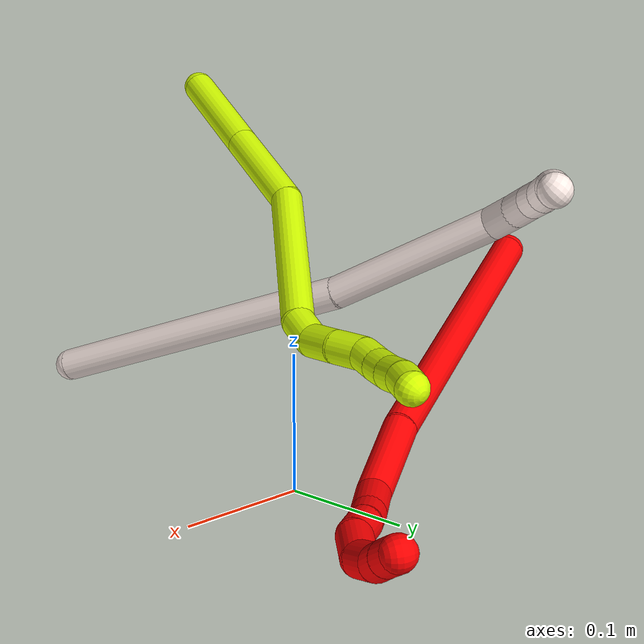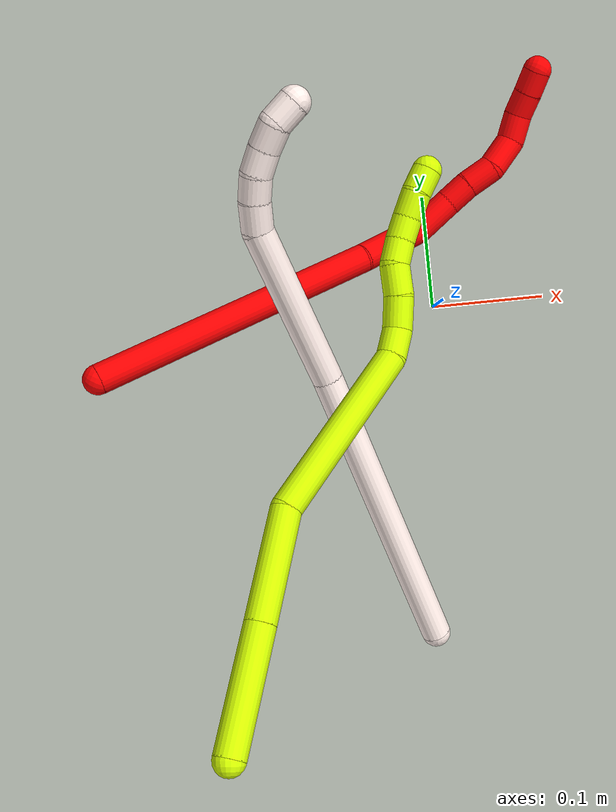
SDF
<sdf version="1.7">
 <world name="default">
  <model name="photoneo_s_sensor">
   <static>1</static>
   <pose>0 0 2 1.57079 1.57079 3.14159</pose>
   <link name="link">
    <inertial><mass>0.1</mass></inertial>
    <sensor name="sensor" type="depth">
     <update_rate>30</update_rate>
     <camera>
      <horizontal_fov>1.22</horizontal_fov>
      <image><width>1920</width><height>1200</height><format>B8G8R8</format></image>
      <clip><near>0.1</near><far>4</far></clip>
      <depth_camera><output>points</output></depth_camera>
     </camera>
     <plugin name="camera_plugin" filename="libgazebo_ros_depth_camera.so">
      <baseline>0.2</baseline>
      <alwaysOn>1</alwaysOn>
      <updateRate>0.0</updateRate>
      <cameraName>camera_ir</cameraName>
      <imageTopicName>/camera/color/image_raw</imageTopicName>
      <cameraInfoTopicName>/camera/color/camera_info</cameraInfoTopicName>
      <depthImageTopicName>/camera/depth/image_raw</depthImageTopicName>
      <depthImageCameraInfoTopicName>/camera/depth/camera_info</depthImageCameraInfoTopicName>
      <pointCloudTopicName>/camera/depth/points</pointCloudTopicName>
      <frameName>fr_optical</frameName>
      <pointCloudCutoff>0.1</pointCloudCutoff>
      <pointCloudCutoffMax>2.0</pointCloudCutoffMax>
      <distortionK1>0</distortionK1>
      <distortionK2>0</distortionK2>
      <distortionK3>0</distortionK3>
      <distortionT1>0</distortionT1>
      <distortionT2>0</distortionT2>
      <CxPrime>0</CxPrime>
      <Cx>0</Cx>
      <Cy>0</Cy>
      <focalLength>0</focalLength>
      <hackBaseline>0</hackBaseline>
     </plugin>
    </sensor>
   </link>
  </model>
  <model name="bin">
   <static>1</static>
   <link name="bottom">
    <collision name="collision-bottom">
     <pose>0 0 -0.01 0 -0 0</pose>
     <geometry><box><size>0.8 0.6 0.02</size></box></geometry>
     <surface>
      <friction><ode><mu>100</mu><mu2>100</mu2></ode></friction>
      <contact><collide_bitmask>65535</collide_bitmask></contact>
     </surface>
    </collision>
   </link>
   <link name="west_wall">
    <collision name="collision-west_wall">
     <pose>-0.41 0 0.1 0 -0 0</pose>
     <geometry><box><size>0.02 0.6 0.2</size></box></geometry>
     <surface>
      <friction><ode><mu>100</mu><mu2>100</mu2></ode></friction>
      <contact><collide_bitmask>65535</collide_bitmask></contact>
     </surface>
    </collision>
   </link>
   <link name="east_wall">
    <collision name="collision-east_wall">
     <pose>0.41 0 0.1 0 -0 0</pose>
     <geometry><box><size>0.02 0.6 0.2</size></box></geometry>
     <surface>
      <friction><ode><mu>100</mu><mu2>100</mu2></ode></friction>
      <contact><collide_bitmask>65535</collide_bitmask></contact>
     </surface>
    </collision>
   </link>
   <link name="south_wall">
    <collision name="collision-south_wall">
     <pose>0 -0.31 0.1 0 -0 0</pose>
     <geometry><box><size>0.8 0.02 0.2</size></box></geometry>
     <surface>
      <friction><ode><mu>100</mu><mu2>100</mu2></ode></friction>
      <contact><collide_bitmask>65535</collide_bitmask></contact>
     </surface>
    </collision>
   </link>
   <link name="north_wall">
    <collision name="collision-north_wall">
     <pose>0 0.31 0.1 0 -0 0</pose>
     <geometry><box><size>0.8 0.02 0.2</size></box></geometry>
     <surface>
      <friction><ode><mu>100</mu><mu2>100</mu2></ode></friction>
      <contact><collide_bitmask>65535</collide_bitmask></contact>
     </surface>
    </collision>
   </link>
  </model>
  <model name="2">
   <static>0</static>
   <link name="2">
    <collision name="collision-cylinder-e_1_1_4">
     <pose>0.085061 0.05128 -0.077461 -2.55682 0.741396 -1.82363</pose>
     <geometry><cylinder><radius>0.0125</radius><length>0.251915</length></cylinder></geometry>
     <surface>
      <friction><ode><mu>1.16</mu><mu2>1.16</mu2><slip1>0</slip1><slip2>0</slip2></ode></friction>
      <contact><ode><kp>1e+06</kp><kd>1</kd><max_vel>0</max_vel><min_depth>0.001</min_depth></ode></contact>
     </surface>
    </collision>
    <visual name="visual-cylinder-e_1_1_4">
     <pose>0.085061 0.05128 -0.077461 -2.55682 0.741396 -1.82363</pose>
     <geometry><cylinder><radius>0.0125</radius><length>0.251915</length></cylinder></geometry>
     <material><ambient>1 0 0 1</ambient></material>
    </visual>
    <collision name="collision-cylinder-e_2_4_5">
     <pose>0.190905 0.120486 -0.173064 -2.36216 0.683736 -1.42784</pose>
     <geometry><cylinder><radius>0.0125</radius><length>0.065799</length></cylinder></geometry>
     <surface>
      <friction><ode><mu>1.16</mu><mu2>1.16</mu2><slip1>0</slip1><slip2>0</slip2></ode></friction>
      <contact><ode><kp>1e+06</kp><kd>1</kd><max_vel>0</max_vel><min_depth>0.001</min_depth></ode></contact>
     </surface>
    </collision>
    <visual name="visual-cylinder-e_2_4_5">
     <pose>0.190905 0.120486 -0.173064 -2.36216 0.683736 -1.42784</pose>
     <geometry><cylinder><radius>0.0125</radius><length>0.065799</length></cylinder></geometry>
     <material><ambient>1 0 0 1</ambient></material>
    </visual>
    <collision name="collision-cylinder-e_3_5_6">
     <pose>0.228065 0.14155 -0.197831 -2.69931 1.14993 -2.47369</pose>
     <geometry><cylinder><radius>0.0125</radius><length>0.035888</length></cylinder></geometry>
     <surface>
      <friction><ode><mu>1.16</mu><mu2>1.16</mu2><slip1>0</slip1><slip2>0</slip2></ode></friction>
      <contact><ode><kp>1e+06</kp><kd>1</kd><max_vel>0</max_vel><min_depth>0.001</min_depth></ode></contact>
     </surface>
    </collision>
    <visual name="visual-cylinder-e_3_5_6">
     <pose>0.228065 0.14155 -0.197831 -2.69931 1.14993 -2.47369</pose>
     <geometry><cylinder><radius>0.0125</radius><length>0.035888</length></cylinder></geometry>
     <material><ambient>1 0 0 1</ambient></material>
    </visual>
    <collision name="collision-cylinder-e_4_6_7">
     <pose>0.255213 0.145419 -0.208829 -2.97593 1.18025 -2.89493</pose>
     <geometry><cylinder><radius>0.0125</radius><length>0.023294</length></cylinder></geometry>
     <surface>
      <friction><ode><mu>1.16</mu><mu2>1.16</mu2><slip1>0</slip1><slip2>0</slip2></ode></friction>
      <contact><ode><kp>1e+06</kp><kd>1</kd><max_vel>0</max_vel><min_depth>0.001</min_depth></ode></contact>
     </surface>
    </collision>
    <visual name="visual-cylinder-e_4_6_7">
     <pose>0.255213 0.145419 -0.208829 -2.97593 1.18025 -2.89493</pose>
     <geometry><cylinder><radius>0.0125</radius><length>0.023294</length></cylinder></geometry>
     <material><ambient>1 0 0 1</ambient></material>
    </visual>
    <collision name="collision-cylinder-e_5_7_8">
     <pose>0.277523 0.14735 -0.219754 -2.96047 1.04735 -2.82962</pose>
     <geometry><cylinder><radius>0.0125</radius><length>0.026648</length></cylinder></geometry>
     <surface>
      <friction><ode><mu>1.16</mu><mu2>1.16</mu2><slip1>0</slip1><slip2>0</slip2></ode></friction>
      <contact><ode><kp>1e+06</kp><kd>1</kd><max_vel>0</max_vel><min_depth>0.001</min_depth></ode></contact>
     </surface>
    </collision>
    <visual name="visual-cylinder-e_5_7_8">
     <pose>0.277523 0.14735 -0.219754 -2.96047 1.04735 -2.82962</pose>
     <geometry><cylinder><radius>0.0125</radius><length>0.026648</length></cylinder></geometry>
     <material><ambient>1 0 0 1</ambient></material>
    </visual>
    <collision name="collision-cylinder-e_6_8_9">
     <pose>0.303253 0.153055 -0.229017 -2.11249 1.21592 -1.77706</pose>
     <geometry><cylinder><radius>0.0125</radius><length>0.030265</length></cylinder></geometry>
     <surface>
      <friction><ode><mu>1.16</mu><mu2>1.16</mu2><slip1>0</slip1><slip2>0</slip2></ode></friction>
      <contact><ode><kp>1e+06</kp><kd>1</kd><max_vel>0</max_vel><min_depth>0.001</min_depth></ode></contact>
     </surface>
    </collision>
    <visual name="visual-cylinder-e_6_8_9">
     <pose>0.303253 0.153055 -0.229017 -2.11249 1.21592 -1.77706</pose>
     <geometry><cylinder><radius>0.0125</radius><length>0.030265</length></cylinder></geometry>
     <material><ambient>1 0 0 1</ambient></material>
    </visual>
    <collision name="collision-cylinder-e_7_9_10">
     <pose>0.329427 0.157215 -0.229335 0.143412 1.37171 0.117433</pose>
     <geometry><cylinder><radius>0.0125</radius><length>0.024452</length></cylinder></geometry>
     <surface>
      <friction><ode><mu>1.16</mu><mu2>1.16</mu2><slip1>0</slip1><slip2>0</slip2></ode></friction>
      <contact><ode><kp>1e+06</kp><kd>1</kd><max_vel>0</max_vel><min_depth>0.001</min_depth></ode></contact>
     </surface>
    </collision>
    <visual name="visual-cylinder-e_7_9_10">
     <pose>0.329427 0.157215 -0.229335 0.143412 1.37171 0.117433</pose>
     <geometry><cylinder><radius>0.0125</radius><length>0.024452</length></cylinder></geometry>
     <material><ambient>1 0 0 1</ambient></material>
    </visual>
    <collision name="collision-cylinder-e_8_10_11">
     <pose>0.351464 0.153709 -0.226044 1.29401 1.25494 1.00249</pose>
     <geometry><cylinder><radius>0.0125</radius><length>0.021151</length></cylinder></geometry>
     <surface>
      <friction><ode><mu>1.16</mu><mu2>1.16</mu2><slip1>0</slip1><slip2>0</slip2></ode></friction>
      <contact><ode><kp>1e+06</kp><kd>1</kd><max_vel>0</max_vel><min_depth>0.001</min_depth></ode></contact>
     </surface>
    </collision>
    <visual name="visual-cylinder-e_8_10_11">
     <pose>0.351464 0.153709 -0.226044 1.29401 1.25494 1.00249</pose>
     <geometry><cylinder><radius>0.0125</radius><length>0.021151</length></cylinder></geometry>
     <material><ambient>1 0 0 1</ambient></material>
    </visual>
    <collision name="collision-cylinder-e_9_11_2">
     <pose>0.371326 0.147684 -0.223915 1.16514 1.26298 0.898098</pose>
     <geometry><cylinder><radius>0.0125</radius><length>0.020589</length></cylinder></geometry>
     <surface>
      <friction><ode><mu>1.16</mu><mu2>1.16</mu2><slip1>0</slip1><slip2>0</slip2></ode></friction>
      <contact><ode><kp>1e+06</kp><kd>1</kd><max_vel>0</max_vel><min_depth>0.001</min_depth></ode></contact>
     </surface>
    </collision>
    <visual name="visual-cylinder-e_9_11_2">
     <pose>0.371326 0.147684 -0.223915 1.16514 1.26298 0.898098</pose>
     <geometry><cylinder><radius>0.0125</radius><length>0.020589</length></cylinder></geometry>
     <material><ambient>1 0 0 1</ambient></material>
    </visual>
    <collision name="collision-sphere-2">
     <pose>0.381137 0.144818 -0.222685 0 -0 0</pose>
     <geometry><sphere><radius>0.0125</radius></sphere></geometry>
     <surface>
      <friction><ode><mu>1.16</mu><mu2>1.16</mu2><slip1>0</slip1><slip2>0</slip2></ode></friction>
      <contact><ode><kp>1e+06</kp><kd>1</kd><max_vel>0</max_vel><min_depth>0.001</min_depth></ode></contact>
     </surface>
    </collision>
    <visual name="visual-sphere-2">
     <pose>0.381137 0.144818 -0.222685 0 -0 0</pose>
     <geometry><sphere><radius>0.0125</radius></sphere></geometry>
     <material><ambient>1 0 0 1</ambient></material>
    </visual>
    <collision name="collision-sphere-11">
     <pose>0.361516 0.150549 -0.225146 0 -0 0</pose>
     <geometry><sphere><radius>0.0125</radius></sphere></geometry>
     <surface>
      <friction><ode><mu>1.16</mu><mu2>1.16</mu2><slip1>0</slip1><slip2>0</slip2></ode></friction>
      <contact><ode><kp>1e+06</kp><kd>1</kd><max_vel>0</max_vel><min_depth>0.001</min_depth></ode></contact>
     </surface>
    </collision>
    <visual name="visual-sphere-11">
     <pose>0.361516 0.150549 -0.225146 0 -0 0</pose>
     <geometry><sphere><radius>0.0125</radius></sphere></geometry>
     <material><ambient>1 0 0 1</ambient></material>
    </visual>
    <collision name="collision-sphere-10">
     <pose>0.341411 0.156869 -0.226941 0 -0 0</pose>
     <geometry><sphere><radius>0.0125</radius></sphere></geometry>
     <surface>
      <friction><ode><mu>1.16</mu><mu2>1.16</mu2><slip1>0</slip1><slip2>0</slip2></ode></friction>
      <contact><ode><kp>1e+06</kp><kd>1</kd><max_vel>0</max_vel><min_depth>0.001</min_depth></ode></contact>
     </surface>
    </collision>
    <visual name="visual-sphere-10">
     <pose>0.341411 0.156869 -0.226941 0 -0 0</pose>
     <geometry><sphere><radius>0.0125</radius></sphere></geometry>
     <material><ambient>1 0 0 1</ambient></material>
    </visual>
    <collision name="collision-sphere-9">
     <pose>0.317443 0.157561 -0.231728 0 -0 0</pose>
     <geometry><sphere><radius>0.0125</radius></sphere></geometry>
     <surface>
      <friction><ode><mu>1.16</mu><mu2>1.16</mu2><slip1>0</slip1><slip2>0</slip2></ode></friction>
      <contact><ode><kp>1e+06</kp><kd>1</kd><max_vel>0</max_vel><min_depth>0.001</min_depth></ode></contact>
     </surface>
    </collision>
    <visual name="visual-sphere-9">
     <pose>0.317443 0.157561 -0.231728 0 -0 0</pose>
     <geometry><sphere><radius>0.0125</radius></sphere></geometry>
     <material><ambient>1 0 0 1</ambient></material>
    </visual>
    <collision name="collision-sphere-4">
     <pose>0.170123 0.10256 -0.154922 0 -0 0</pose>
     <geometry><sphere><radius>0.0125</radius></sphere></geometry>
     <surface>
      <friction><ode><mu>1.16</mu><mu2>1.16</mu2><slip1>0</slip1><slip2>0</slip2></ode></friction>
      <contact><ode><kp>1e+06</kp><kd>1</kd><max_vel>0</max_vel><min_depth>0.001</min_depth></ode></contact>
     </surface>
    </collision>
    <visual name="visual-sphere-4">
     <pose>0.170123 0.10256 -0.154922 0 -0 0</pose>
     <geometry><sphere><radius>0.0125</radius></sphere></geometry>
     <material><ambient>1 0 0 1</ambient></material>
    </visual>
    <collision name="collision-sphere-1">
     <geometry><sphere><radius>0.0125</radius></sphere></geometry>
     <surface>
      <friction><ode><mu>1.16</mu><mu2>1.16</mu2><slip1>0</slip1><slip2>0</slip2></ode></friction>
      <contact><ode><kp>1e+06</kp><kd>1</kd><max_vel>0</max_vel><min_depth>0.001</min_depth></ode></contact>
     </surface>
    </collision>
    <visual name="visual-sphere-1">
     <geometry><sphere><radius>0.0125</radius></sphere></geometry>
     <material><ambient>1 0 0 1</ambient></material>
    </visual>
    <collision name="collision-sphere-8">
     <pose>0.289063 0.14855 -0.226306 0 -0 0</pose>
     <geometry><sphere><radius>0.0125</radius></sphere></geometry>
     <surface>
      <friction><ode><mu>1.16</mu><mu2>1.16</mu2><slip1>0</slip1><slip2>0</slip2></ode></friction>
      <contact><ode><kp>1e+06</kp><kd>1</kd><max_vel>0</max_vel><min_depth>0.001</min_depth></ode></contact>
     </surface>
    </collision>
    <visual name="visual-sphere-8">
     <pose>0.289063 0.14855 -0.226306 0 -0 0</pose>
     <geometry><sphere><radius>0.0125</radius></sphere></geometry>
     <material><ambient>1 0 0 1</ambient></material>
    </visual>
    <collision name="collision-sphere-5">
     <pose>0.211688 0.138412 -0.191205 0 -0 0</pose>
     <geometry><sphere><radius>0.0125</radius></sphere></geometry>
     <surface>
      <friction><ode><mu>1.16</mu><mu2>1.16</mu2><slip1>0</slip1><slip2>0</slip2></ode></friction>
      <contact><ode><kp>1e+06</kp><kd>1</kd><max_vel>0</max_vel><min_depth>0.001</min_depth></ode></contact>
     </surface>
    </collision>
    <visual name="visual-sphere-5">
     <pose>0.211688 0.138412 -0.191205 0 -0 0</pose>
     <geometry><sphere><radius>0.0125</radius></sphere></geometry>
     <material><ambient>1 0 0 1</ambient></material>
    </visual>
    <collision name="collision-sphere-6">
     <pose>0.244443 0.144688 -0.204456 0 -0 0</pose>
     <geometry><sphere><radius>0.0125</radius></sphere></geometry>
     <surface>
      <friction><ode><mu>1.16</mu><mu2>1.16</mu2><slip1>0</slip1><slip2>0</slip2></ode></friction>
      <contact><ode><kp>1e+06</kp><kd>1</kd><max_vel>0</max_vel><min_depth>0.001</min_depth></ode></contact>
     </surface>
    </collision>
    <visual name="visual-sphere-6">
     <pose>0.244443 0.144688 -0.204456 0 -0 0</pose>
     <geometry><sphere><radius>0.0125</radius></sphere></geometry>
     <material><ambient>1 0 0 1</ambient></material>
    </visual>
    <collision name="collision-sphere-7">
     <pose>0.265983 0.14615 -0.213203 0 -0 0</pose>
     <geometry><sphere><radius>0.0125</radius></sphere></geometry>
     <surface>
      <friction><ode><mu>1.16</mu><mu2>1.16</mu2><slip1>0</slip1><slip2>0</slip2></ode></friction>
      <contact><ode><kp>1e+06</kp><kd>1</kd><max_vel>0</max_vel><min_depth>0.001</min_depth></ode></contact>
     </surface>
    </collision>
    <visual name="visual-sphere-7">
     <pose>0.265983 0.14615 -0.213203 0 -0 0</pose>
     <geometry><sphere><radius>0.0125</radius></sphere></geometry>
     <material><ambient>1 0 0 1</ambient></material>
    </visual>
    <inertial>
     <pose>0.175653 0.096016 -0.141302 0 -0 0</pose>
     <mass>0.5</mass>
     <inertia>
      <ixx>-0.001199</ixx>
      <ixy>0</ixy>
      <ixz>0</ixz>
      <iyy>-0.000179</iyy>
      <iyz>0</iyz>
      <izz>-0.00152</izz>
     </inertia>
    </inertial>
   </link>
   <pose>-0.282909 -0.037702 0.125792 -1.47473 -0.194386 1.01135</pose>
  </model>
  <model name="11">
   <static>0</static>
   <link name="11">
    <collision name="collision-cylinder-e_1_1_4">
     <pose>-0.060546 0.104959 -0.045536 -1.98014 -0.486731 0.723435</pose>
     <geometry><cylinder><radius>0.0125</radius><length>0.258889</length></cylinder></geometry>
     <surface>
      <friction><ode><mu>1.16</mu><mu2>1.16</mu2><slip1>0</slip1><slip2>0</slip2></ode></friction>
      <contact><ode><kp>1e+06</kp><kd>1</kd><max_vel>0</max_vel><min_depth>0.001</min_depth></ode></contact>
     </surface>
    </collision>
    <visual name="visual-cylinder-e_1_1_4">
     <pose>-0.060546 0.104959 -0.045536 -1.98014 -0.486731 0.723435</pose>
     <geometry><cylinder><radius>0.0125</radius><length>0.258889</length></cylinder></geometry>
     <material><ambient>1 0.933333 0.909804 1</ambient></material>
    </visual>
    <collision name="collision-cylinder-e_2_4_5">
     <pose>-0.159449 0.264236 -0.108344 -1.87866 -0.592345 0.790547</pose>
     <geometry><cylinder><radius>0.0125</radius><length>0.137404</length></cylinder></geometry>
     <surface>
      <friction><ode><mu>1.16</mu><mu2>1.16</mu2><slip1>0</slip1><slip2>0</slip2></ode></friction>
      <contact><ode><kp>1e+06</kp><kd>1</kd><max_vel>0</max_vel><min_depth>0.001</min_depth></ode></contact>
     </surface>
    </collision>
    <visual name="visual-cylinder-e_2_4_5">
     <pose>-0.159449 0.264236 -0.108344 -1.87866 -0.592345 0.790547</pose>
     <geometry><cylinder><radius>0.0125</radius><length>0.137404</length></cylinder></geometry>
     <material><ambient>1 0.933333 0.909804 1</ambient></material>
    </visual>
    <collision name="collision-cylinder-e_3_5_6">
     <pose>-0.201969 0.329605 -0.126259 -1.62898 -0.359711 0.38077</pose>
     <geometry><cylinder><radius>0.0125</radius><length>0.023654</length></cylinder></geometry>
     <surface>
      <friction><ode><mu>1.16</mu><mu2>1.16</mu2><slip1>0</slip1><slip2>0</slip2></ode></friction>
      <contact><ode><kp>1e+06</kp><kd>1</kd><max_vel>0</max_vel><min_depth>0.001</min_depth></ode></contact>
     </surface>
    </collision>
    <visual name="visual-cylinder-e_3_5_6">
     <pose>-0.201969 0.329605 -0.126259 -1.62898 -0.359711 0.38077</pose>
     <geometry><cylinder><radius>0.0125</radius><length>0.023654</length></cylinder></geometry>
     <material><ambient>1 0.933333 0.909804 1</ambient></material>
    </visual>
    <collision name="collision-cylinder-e_4_6_7">
     <pose>-0.208402 0.350404 -0.126571 -1.53671 -0.228657 0.221056</pose>
     <geometry><cylinder><radius>0.0125</radius><length>0.020028</length></cylinder></geometry>
     <surface>
      <friction><ode><mu>1.16</mu><mu2>1.16</mu2><slip1>0</slip1><slip2>0</slip2></ode></friction>
      <contact><ode><kp>1e+06</kp><kd>1</kd><max_vel>0</max_vel><min_depth>0.001</min_depth></ode></contact>
     </surface>
    </collision>
    <visual name="visual-cylinder-e_4_6_7">
     <pose>-0.208402 0.350404 -0.126571 -1.53671 -0.228657 0.221056</pose>
     <geometry><cylinder><radius>0.0125</radius><length>0.020028</length></cylinder></geometry>
     <material><ambient>1 0.933333 0.909804 1</ambient></material>
    </visual>
    <collision name="collision-cylinder-e_5_7_8">
     <pose>-0.210493 0.370086 -0.125053 -1.45198 0.017932 -0.015919</pose>
     <geometry><cylinder><radius>0.0125</radius><length>0.020014</length></cylinder></geometry>
     <surface>
      <friction><ode><mu>1.16</mu><mu2>1.16</mu2><slip1>0</slip1><slip2>0</slip2></ode></friction>
      <contact><ode><kp>1e+06</kp><kd>1</kd><max_vel>0</max_vel><min_depth>0.001</min_depth></ode></contact>
     </surface>
    </collision>
    <visual name="visual-cylinder-e_5_7_8">
     <pose>-0.210493 0.370086 -0.125053 -1.45198 0.017932 -0.015919</pose>
     <geometry><cylinder><radius>0.0125</radius><length>0.020014</length></cylinder></geometry>
     <material><ambient>1 0.933333 0.909804 1</ambient></material>
    </visual>
    <collision name="collision-cylinder-e_6_8_9">
     <pose>-0.209904 0.389758 -0.121602 -1.34233 0.040886 -0.032471</pose>
     <geometry><cylinder><radius>0.0125</radius><length>0.020011</length></cylinder></geometry>
     <surface>
      <friction><ode><mu>1.16</mu><mu2>1.16</mu2><slip1>0</slip1><slip2>0</slip2></ode></friction>
      <contact><ode><kp>1e+06</kp><kd>1</kd><max_vel>0</max_vel><min_depth>0.001</min_depth></ode></contact>
     </surface>
    </collision>
    <visual name="visual-cylinder-e_6_8_9">
     <pose>-0.209904 0.389758 -0.121602 -1.34233 0.040886 -0.032471</pose>
     <geometry><cylinder><radius>0.0125</radius><length>0.020011</length></cylinder></geometry>
     <material><ambient>1 0.933333 0.909804 1</ambient></material>
    </visual>
    <collision name="collision-cylinder-e_7_9_2">
     <pose>-0.204796 0.408122 -0.117466 -1.35714 0.489214 -0.397207</pose>
     <geometry><cylinder><radius>0.0125</radius><length>0.020001</length></cylinder></geometry>
     <surface>
      <friction><ode><mu>1.16</mu><mu2>1.16</mu2><slip1>0</slip1><slip2>0</slip2></ode></friction>
      <contact><ode><kp>1e+06</kp><kd>1</kd><max_vel>0</max_vel><min_depth>0.001</min_depth></ode></contact>
     </surface>
    </collision>
    <visual name="visual-cylinder-e_7_9_2">
     <pose>-0.204796 0.408122 -0.117466 -1.35714 0.489214 -0.397207</pose>
     <geometry><cylinder><radius>0.0125</radius><length>0.020001</length></cylinder></geometry>
     <material><ambient>1 0.933333 0.909804 1</ambient></material>
    </visual>
    <collision name="collision-sphere-2">
     <pose>-0.200096 0.416749 -0.115595 0 -0 0</pose>
     <geometry><sphere><radius>0.0125</radius></sphere></geometry>
     <surface>
      <friction><ode><mu>1.16</mu><mu2>1.16</mu2><slip1>0</slip1><slip2>0</slip2></ode></friction>
      <contact><ode><kp>1e+06</kp><kd>1</kd><max_vel>0</max_vel><min_depth>0.001</min_depth></ode></contact>
     </surface>
    </collision>
    <visual name="visual-sphere-2">
     <pose>-0.200096 0.416749 -0.115595 0 -0 0</pose>
     <geometry><sphere><radius>0.0125</radius></sphere></geometry>
     <material><ambient>1 0.933333 0.909804 1</ambient></material>
    </visual>
    <collision name="collision-sphere-9">
     <pose>-0.209495 0.399496 -0.119338 0 -0 0</pose>
     <geometry><sphere><radius>0.0125</radius></sphere></geometry>
     <surface>
      <friction><ode><mu>1.16</mu><mu2>1.16</mu2><slip1>0</slip1><slip2>0</slip2></ode></friction>
      <contact><ode><kp>1e+06</kp><kd>1</kd><max_vel>0</max_vel><min_depth>0.001</min_depth></ode></contact>
     </surface>
    </collision>
    <visual name="visual-sphere-9">
     <pose>-0.209495 0.399496 -0.119338 0 -0 0</pose>
     <geometry><sphere><radius>0.0125</radius></sphere></geometry>
     <material><ambient>1 0.933333 0.909804 1</ambient></material>
    </visual>
    <collision name="collision-sphere-4">
     <pose>-0.121092 0.209919 -0.091072 0 -0 0</pose>
     <geometry><sphere><radius>0.0125</radius></sphere></geometry>
     <surface>
      <friction><ode><mu>1.16</mu><mu2>1.16</mu2><slip1>0</slip1><slip2>0</slip2></ode></friction>
      <contact><ode><kp>1e+06</kp><kd>1</kd><max_vel>0</max_vel><min_depth>0.001</min_depth></ode></contact>
     </surface>
    </collision>
    <visual name="visual-sphere-4">
     <pose>-0.121092 0.209919 -0.091072 0 -0 0</pose>
     <geometry><sphere><radius>0.0125</radius></sphere></geometry>
     <material><ambient>1 0.933333 0.909804 1</ambient></material>
    </visual>
    <collision name="collision-sphere-1">
     <geometry><sphere><radius>0.0125</radius></sphere></geometry>
     <surface>
      <friction><ode><mu>1.16</mu><mu2>1.16</mu2><slip1>0</slip1><slip2>0</slip2></ode></friction>
      <contact><ode><kp>1e+06</kp><kd>1</kd><max_vel>0</max_vel><min_depth>0.001</min_depth></ode></contact>
     </surface>
    </collision>
    <visual name="visual-sphere-1">
     <geometry><sphere><radius>0.0125</radius></sphere></geometry>
     <material><ambient>1 0.933333 0.909804 1</ambient></material>
    </visual>
    <collision name="collision-sphere-8">
     <pose>-0.210313 0.380021 -0.123867 0 -0 0</pose>
     <geometry><sphere><radius>0.0125</radius></sphere></geometry>
     <surface>
      <friction><ode><mu>1.16</mu><mu2>1.16</mu2><slip1>0</slip1><slip2>0</slip2></ode></friction>
      <contact><ode><kp>1e+06</kp><kd>1</kd><max_vel>0</max_vel><min_depth>0.001</min_depth></ode></contact>
     </surface>
    </collision>
    <visual name="visual-sphere-8">
     <pose>-0.210313 0.380021 -0.123867 0 -0 0</pose>
     <geometry><sphere><radius>0.0125</radius></sphere></geometry>
     <material><ambient>1 0.933333 0.909804 1</ambient></material>
    </visual>
    <collision name="collision-sphere-5">
     <pose>-0.197806 0.318553 -0.125616 0 -0 0</pose>
     <geometry><sphere><radius>0.0125</radius></sphere></geometry>
     <surface>
      <friction><ode><mu>1.16</mu><mu2>1.16</mu2><slip1>0</slip1><slip2>0</slip2></ode></friction>
      <contact><ode><kp>1e+06</kp><kd>1</kd><max_vel>0</max_vel><min_depth>0.001</min_depth></ode></contact>
     </surface>
    </collision>
    <visual name="visual-sphere-5">
     <pose>-0.197806 0.318553 -0.125616 0 -0 0</pose>
     <geometry><sphere><radius>0.0125</radius></sphere></geometry>
     <material><ambient>1 0.933333 0.909804 1</ambient></material>
    </visual>
    <collision name="collision-sphere-6">
     <pose>-0.206132 0.340656 -0.126903 0 -0 0</pose>
     <geometry><sphere><radius>0.0125</radius></sphere></geometry>
     <surface>
      <friction><ode><mu>1.16</mu><mu2>1.16</mu2><slip1>0</slip1><slip2>0</slip2></ode></friction>
      <contact><ode><kp>1e+06</kp><kd>1</kd><max_vel>0</max_vel><min_depth>0.001</min_depth></ode></contact>
     </surface>
    </collision>
    <visual name="visual-sphere-6">
     <pose>-0.206132 0.340656 -0.126903 0 -0 0</pose>
     <geometry><sphere><radius>0.0125</radius></sphere></geometry>
     <material><ambient>1 0.933333 0.909804 1</ambient></material>
    </visual>
    <collision name="collision-sphere-7">
     <pose>-0.210672 0.360151 -0.126238 0 -0 0</pose>
     <geometry><sphere><radius>0.0125</radius></sphere></geometry>
     <surface>
      <friction><ode><mu>1.16</mu><mu2>1.16</mu2><slip1>0</slip1><slip2>0</slip2></ode></friction>
      <contact><ode><kp>1e+06</kp><kd>1</kd><max_vel>0</max_vel><min_depth>0.001</min_depth></ode></contact>
     </surface>
    </collision>
    <visual name="visual-sphere-7">
     <pose>-0.210672 0.360151 -0.126238 0 -0 0</pose>
     <geometry><sphere><radius>0.0125</radius></sphere></geometry>
     <material><ambient>1 0.933333 0.909804 1</ambient></material>
    </visual>
    <inertial>
     <pose>-0.118088 0.203326 -0.078966 0 -0 0</pose>
     <mass>0.5</mass>
     <inertia>
      <ixx>0.002069</ixx>
      <ixy>0</ixy>
      <ixz>0</ixz>
      <iyy>0.001033</iyy>
      <iyz>0</iyz>
      <izz>-0.000567</izz>
     </inertia>
    </inertial>
   </link>
   <pose>-0.02814 -0.287772 0.031294 0.439333 0.743276 -0.051743</pose>
  </model>
  <model name="15">
   <static>0</static>
   <link name="15">
    <collision name="collision-cylinder-e_1_1_4">
     <pose>0.01093 0.00545 -0.045638 -3.02274 0.233463 -2.20255</pose>
     <geometry><cylinder><radius>0.0125</radius><length>0.094488</length></cylinder></geometry>
     <surface>
      <friction><ode><mu>1.16</mu><mu2>1.16</mu2><slip1>0</slip1><slip2>0</slip2></ode></friction>
      <contact><ode><kp>1e+06</kp><kd>1</kd><max_vel>0</max_vel><min_depth>0.001</min_depth></ode></contact>
     </surface>
    </collision>
    <visual name="visual-cylinder-e_1_1_4">
     <pose>0.01093 0.00545 -0.045638 -3.02274 0.233463 -2.20255</pose>
     <geometry><cylinder><radius>0.0125</radius><length>0.094488</length></cylinder></geometry>
     <material><ambient>0.835294 1 0 1</ambient></material>
    </visual>
    <collision name="collision-cylinder-e_2_4_5">
     <pose>0.031994 0.015875 -0.13388 -3.02534 0.232014 -2.21531</pose>
     <geometry><cylinder><radius>0.0125</radius><length>0.088149</length></cylinder></geometry>
     <surface>
      <friction><ode><mu>1.16</mu><mu2>1.16</mu2><slip1>0</slip1><slip2>0</slip2></ode></friction>
      <contact><ode><kp>1e+06</kp><kd>1</kd><max_vel>0</max_vel><min_depth>0.001</min_depth></ode></contact>
     </surface>
    </collision>
    <visual name="visual-cylinder-e_2_4_5">
     <pose>0.031994 0.015875 -0.13388 -3.02534 0.232014 -2.21531</pose>
     <geometry><cylinder><radius>0.0125</radius><length>0.088149</length></cylinder></geometry>
     <material><ambient>0.835294 1 0 1</ambient></material>
    </visual>
    <collision name="collision-cylinder-e_3_5_6">
     <pose>0.075139 0.051373 -0.239791 -2.69234 0.43911 -1.54719</pose>
     <geometry><cylinder><radius>0.0125</radius><length>0.155294</length></cylinder></geometry>
     <surface>
      <friction><ode><mu>1.16</mu><mu2>1.16</mu2><slip1>0</slip1><slip2>0</slip2></ode></friction>
      <contact><ode><kp>1e+06</kp><kd>1</kd><max_vel>0</max_vel><min_depth>0.001</min_depth></ode></contact>
     </surface>
    </collision>
    <visual name="visual-cylinder-e_3_5_6">
     <pose>0.075139 0.051373 -0.239791 -2.69234 0.43911 -1.54719</pose>
     <geometry><cylinder><radius>0.0125</radius><length>0.155294</length></cylinder></geometry>
     <material><ambient>0.835294 1 0 1</ambient></material>
    </visual>
    <collision name="collision-cylinder-e_4_6_7">
     <pose>0.110609 0.083983 -0.315287 -2.97196 0.196302 -1.71711</pose>
     <geometry><cylinder><radius>0.0125</radius><length>0.025219</length></cylinder></geometry>
     <surface>
      <friction><ode><mu>1.16</mu><mu2>1.16</mu2><slip1>0</slip1><slip2>0</slip2></ode></friction>
      <contact><ode><kp>1e+06</kp><kd>1</kd><max_vel>0</max_vel><min_depth>0.001</min_depth></ode></contact>
     </surface>
    </collision>
    <visual name="visual-cylinder-e_4_6_7">
     <pose>0.110609 0.083983 -0.315287 -2.97196 0.196302 -1.71711</pose>
     <geometry><cylinder><radius>0.0125</radius><length>0.025219</length></cylinder></geometry>
     <material><ambient>0.835294 1 0 1</ambient></material>
    </visual>
    <collision name="collision-cylinder-e_5_7_8">
     <pose>0.1097 0.088329 -0.340845 -2.97425 -0.243528 1.93992</pose>
     <geometry><cylinder><radius>0.0125</radius><length>0.027939</length></cylinder></geometry>
     <surface>
      <friction><ode><mu>1.16</mu><mu2>1.16</mu2><slip1>0</slip1><slip2>0</slip2></ode></friction>
      <contact><ode><kp>1e+06</kp><kd>1</kd><max_vel>0</max_vel><min_depth>0.001</min_depth></ode></contact>
     </surface>
    </collision>
    <visual name="visual-cylinder-e_5_7_8">
     <pose>0.1097 0.088329 -0.340845 -2.97425 -0.243528 1.93992</pose>
     <geometry><cylinder><radius>0.0125</radius><length>0.027939</length></cylinder></geometry>
     <material><ambient>0.835294 1 0 1</ambient></material>
    </visual>
    <collision name="collision-cylinder-e_6_8_9">
     <pose>0.102967 0.090296 -0.366727 3.1183 -0.262571 -2.96567</pose>
     <geometry><cylinder><radius>0.0125</radius><length>0.025922</length></cylinder></geometry>
     <surface>
      <friction><ode><mu>1.16</mu><mu2>1.16</mu2><slip1>0</slip1><slip2>0</slip2></ode></friction>
      <contact><ode><kp>1e+06</kp><kd>1</kd><max_vel>0</max_vel><min_depth>0.001</min_depth></ode></contact>
     </surface>
    </collision>
    <visual name="visual-cylinder-e_6_8_9">
     <pose>0.102967 0.090296 -0.366727 3.1183 -0.262571 -2.96567</pose>
     <geometry><cylinder><radius>0.0125</radius><length>0.025922</length></cylinder></geometry>
     <material><ambient>0.835294 1 0 1</ambient></material>
    </visual>
    <collision name="collision-cylinder-e_7_9_10">
     <pose>0.099745 0.092579 -0.38925 -2.88982 0.013808 -0.109</pose>
     <geometry><cylinder><radius>0.0125</radius><length>0.020674</length></cylinder></geometry>
     <surface>
      <friction><ode><mu>1.16</mu><mu2>1.16</mu2><slip1>0</slip1><slip2>0</slip2></ode></friction>
      <contact><ode><kp>1e+06</kp><kd>1</kd><max_vel>0</max_vel><min_depth>0.001</min_depth></ode></contact>
     </surface>
    </collision>
    <visual name="visual-cylinder-e_7_9_10">
     <pose>0.099745 0.092579 -0.38925 -2.88982 0.013808 -0.109</pose>
     <geometry><cylinder><radius>0.0125</radius><length>0.020674</length></cylinder></geometry>
     <material><ambient>0.835294 1 0 1</ambient></material>
    </visual>
    <collision name="collision-cylinder-e_8_10_11">
     <pose>0.099264 0.098816 -0.40858 -2.76719 -0.062213 0.325641</pose>
     <geometry><cylinder><radius>0.0125</radius><length>0.020066</length></cylinder></geometry>
     <surface>
      <friction><ode><mu>1.16</mu><mu2>1.16</mu2><slip1>0</slip1><slip2>0</slip2></ode></friction>
      <contact><ode><kp>1e+06</kp><kd>1</kd><max_vel>0</max_vel><min_depth>0.001</min_depth></ode></contact>
     </surface>
    </collision>
    <visual name="visual-cylinder-e_8_10_11">
     <pose>0.099264 0.098816 -0.40858 -2.76719 -0.062213 0.325641</pose>
     <geometry><cylinder><radius>0.0125</radius><length>0.020066</length></cylinder></geometry>
     <material><ambient>0.835294 1 0 1</ambient></material>
    </visual>
    <collision name="collision-cylinder-e_9_11_12">
     <pose>0.096843 0.107375 -0.427581 -2.67331 -0.164206 0.664431</pose>
     <geometry><cylinder><radius>0.0125</radius><length>0.021992</length></cylinder></geometry>
     <surface>
      <friction><ode><mu>1.16</mu><mu2>1.16</mu2><slip1>0</slip1><slip2>0</slip2></ode></friction>
      <contact><ode><kp>1e+06</kp><kd>1</kd><max_vel>0</max_vel><min_depth>0.001</min_depth></ode></contact>
     </surface>
    </collision>
    <visual name="visual-cylinder-e_9_11_12">
     <pose>0.096843 0.107375 -0.427581 -2.67331 -0.164206 0.664431</pose>
     <geometry><cylinder><radius>0.0125</radius><length>0.021992</length></cylinder></geometry>
     <material><ambient>0.835294 1 0 1</ambient></material>
    </visual>
    <collision name="collision-cylinder-e_10_12_2">
     <pose>0.095468 0.116906 -0.446257 -2.66587 0.041723 -0.171688</pose>
     <geometry><cylinder><radius>0.0125</radius><length>0.020257</length></cylinder></geometry>
     <surface>
      <friction><ode><mu>1.16</mu><mu2>1.16</mu2><slip1>0</slip1><slip2>0</slip2></ode></friction>
      <contact><ode><kp>1e+06</kp><kd>1</kd><max_vel>0</max_vel><min_depth>0.001</min_depth></ode></contact>
     </surface>
    </collision>
    <visual name="visual-cylinder-e_10_12_2">
     <pose>0.095468 0.116906 -0.446257 -2.66587 0.041723 -0.171688</pose>
     <geometry><cylinder><radius>0.0125</radius><length>0.020257</length></cylinder></geometry>
     <material><ambient>0.835294 1 0 1</ambient></material>
    </visual>
    <collision name="collision-sphere-2">
     <pose>0.09589 0.12154 -0.455252 0 -0 0</pose>
     <geometry><sphere><radius>0.0125</radius></sphere></geometry>
     <surface>
      <friction><ode><mu>1.16</mu><mu2>1.16</mu2><slip1>0</slip1><slip2>0</slip2></ode></friction>
      <contact><ode><kp>1e+06</kp><kd>1</kd><max_vel>0</max_vel><min_depth>0.001</min_depth></ode></contact>
     </surface>
    </collision>
    <visual name="visual-sphere-2">
     <pose>0.09589 0.12154 -0.455252 0 -0 0</pose>
     <geometry><sphere><radius>0.0125</radius></sphere></geometry>
     <material><ambient>0.835294 1 0 1</ambient></material>
    </visual>
    <collision name="collision-sphere-12">
     <pose>0.095046 0.112271 -0.437261 0 -0 0</pose>
     <geometry><sphere><radius>0.0125</radius></sphere></geometry>
     <surface>
      <friction><ode><mu>1.16</mu><mu2>1.16</mu2><slip1>0</slip1><slip2>0</slip2></ode></friction>
      <contact><ode><kp>1e+06</kp><kd>1</kd><max_vel>0</max_vel><min_depth>0.001</min_depth></ode></contact>
     </surface>
    </collision>
    <visual name="visual-sphere-12">
     <pose>0.095046 0.112271 -0.437261 0 -0 0</pose>
     <geometry><sphere><radius>0.0125</radius></sphere></geometry>
     <material><ambient>0.835294 1 0 1</ambient></material>
    </visual>
    <collision name="collision-sphere-11">
     <pose>0.098641 0.102479 -0.4179 0 -0 0</pose>
     <geometry><sphere><radius>0.0125</radius></sphere></geometry>
     <surface>
      <friction><ode><mu>1.16</mu><mu2>1.16</mu2><slip1>0</slip1><slip2>0</slip2></ode></friction>
      <contact><ode><kp>1e+06</kp><kd>1</kd><max_vel>0</max_vel><min_depth>0.001</min_depth></ode></contact>
     </surface>
    </collision>
    <visual name="visual-sphere-11">
     <pose>0.098641 0.102479 -0.4179 0 -0 0</pose>
     <geometry><sphere><radius>0.0125</radius></sphere></geometry>
     <material><ambient>0.835294 1 0 1</ambient></material>
    </visual>
    <collision name="collision-sphere-10">
     <pose>0.099888 0.095154 -0.39926 0 -0 0</pose>
     <geometry><sphere><radius>0.0125</radius></sphere></geometry>
     <surface>
      <friction><ode><mu>1.16</mu><mu2>1.16</mu2><slip1>0</slip1><slip2>0</slip2></ode></friction>
      <contact><ode><kp>1e+06</kp><kd>1</kd><max_vel>0</max_vel><min_depth>0.001</min_depth></ode></contact>
     </surface>
    </collision>
    <visual name="visual-sphere-10">
     <pose>0.099888 0.095154 -0.39926 0 -0 0</pose>
     <geometry><sphere><radius>0.0125</radius></sphere></geometry>
     <material><ambient>0.835294 1 0 1</ambient></material>
    </visual>
    <collision name="collision-sphere-9">
     <pose>0.099603 0.090005 -0.37924 0 -0 0</pose>
     <geometry><sphere><radius>0.0125</radius></sphere></geometry>
     <surface>
      <friction><ode><mu>1.16</mu><mu2>1.16</mu2><slip1>0</slip1><slip2>0</slip2></ode></friction>
      <contact><ode><kp>1e+06</kp><kd>1</kd><max_vel>0</max_vel><min_depth>0.001</min_depth></ode></contact>
     </surface>
    </collision>
    <visual name="visual-sphere-9">
     <pose>0.099603 0.090005 -0.37924 0 -0 0</pose>
     <geometry><sphere><radius>0.0125</radius></sphere></geometry>
     <material><ambient>0.835294 1 0 1</ambient></material>
    </visual>
    <collision name="collision-sphere-4">
     <pose>0.02186 0.0109 -0.091276 0 -0 0</pose>
     <geometry><sphere><radius>0.0125</radius></sphere></geometry>
     <surface>
      <friction><ode><mu>1.16</mu><mu2>1.16</mu2><slip1>0</slip1><slip2>0</slip2></ode></friction>
      <contact><ode><kp>1e+06</kp><kd>1</kd><max_vel>0</max_vel><min_depth>0.001</min_depth></ode></contact>
     </surface>
    </collision>
    <visual name="visual-sphere-4">
     <pose>0.02186 0.0109 -0.091276 0 -0 0</pose>
     <geometry><sphere><radius>0.0125</radius></sphere></geometry>
     <material><ambient>0.835294 1 0 1</ambient></material>
    </visual>
    <collision name="collision-sphere-1">
     <geometry><sphere><radius>0.0125</radius></sphere></geometry>
     <surface>
      <friction><ode><mu>1.16</mu><mu2>1.16</mu2><slip1>0</slip1><slip2>0</slip2></ode></friction>
      <contact><ode><kp>1e+06</kp><kd>1</kd><max_vel>0</max_vel><min_depth>0.001</min_depth></ode></contact>
     </surface>
    </collision>
    <visual name="visual-sphere-1">
     <geometry><sphere><radius>0.0125</radius></sphere></geometry>
     <material><ambient>0.835294 1 0 1</ambient></material>
    </visual>
    <collision name="collision-sphere-8">
     <pose>0.106331 0.090587 -0.354213 0 -0 0</pose>
     <geometry><sphere><radius>0.0125</radius></sphere></geometry>
     <surface>
      <friction><ode><mu>1.16</mu><mu2>1.16</mu2><slip1>0</slip1><slip2>0</slip2></ode></friction>
      <contact><ode><kp>1e+06</kp><kd>1</kd><max_vel>0</max_vel><min_depth>0.001</min_depth></ode></contact>
     </surface>
    </collision>
    <visual name="visual-sphere-8">
     <pose>0.106331 0.090587 -0.354213 0 -0 0</pose>
     <geometry><sphere><radius>0.0125</radius></sphere></geometry>
     <material><ambient>0.835294 1 0 1</ambient></material>
    </visual>
    <collision name="collision-sphere-5">
     <pose>0.042128 0.02085 -0.176484 0 -0 0</pose>
     <geometry><sphere><radius>0.0125</radius></sphere></geometry>
     <surface>
      <friction><ode><mu>1.16</mu><mu2>1.16</mu2><slip1>0</slip1><slip2>0</slip2></ode></friction>
      <contact><ode><kp>1e+06</kp><kd>1</kd><max_vel>0</max_vel><min_depth>0.001</min_depth></ode></contact>
     </surface>
    </collision>
    <visual name="visual-sphere-5">
     <pose>0.042128 0.02085 -0.176484 0 -0 0</pose>
     <geometry><sphere><radius>0.0125</radius></sphere></geometry>
     <material><ambient>0.835294 1 0 1</ambient></material>
    </visual>
    <collision name="collision-sphere-6">
     <pose>0.108149 0.081895 -0.303097 0 -0 0</pose>
     <geometry><sphere><radius>0.0125</radius></sphere></geometry>
     <surface>
      <friction><ode><mu>1.16</mu><mu2>1.16</mu2><slip1>0</slip1><slip2>0</slip2></ode></friction>
      <contact><ode><kp>1e+06</kp><kd>1</kd><max_vel>0</max_vel><min_depth>0.001</min_depth></ode></contact>
     </surface>
    </collision>
    <visual name="visual-sphere-6">
     <pose>0.108149 0.081895 -0.303097 0 -0 0</pose>
     <geometry><sphere><radius>0.0125</radius></sphere></geometry>
     <material><ambient>0.835294 1 0 1</ambient></material>
    </visual>
    <collision name="collision-sphere-7">
     <pose>0.113068 0.086071 -0.327477 0 -0 0</pose>
     <geometry><sphere><radius>0.0125</radius></sphere></geometry>
     <surface>
      <friction><ode><mu>1.16</mu><mu2>1.16</mu2><slip1>0</slip1><slip2>0</slip2></ode></friction>
      <contact><ode><kp>1e+06</kp><kd>1</kd><max_vel>0</max_vel><min_depth>0.001</min_depth></ode></contact>
     </surface>
    </collision>
    <visual name="visual-sphere-7">
     <pose>0.113068 0.086071 -0.327477 0 -0 0</pose>
     <geometry><sphere><radius>0.0125</radius></sphere></geometry>
     <material><ambient>0.835294 1 0 1</ambient></material>
    </visual>
    <inertial>
     <pose>0.064325 0.05089 -0.230042 0 -0 0</pose>
     <mass>0.5</mass>
     <inertia>
      <ixx>-0.000454</ixx>
      <ixy>0</ixy>
      <ixz>0</ixz>
      <iyy>-0.000249</iyy>
      <iyz>0</iyz>
      <izz>-0.000344</izz>
     </inertia>
    </inertial>
   </link>
   <pose>-0.192785 -0.309318 0.243582 1.02707 1.07643 -0.582352</pose>
  </model>
 </world>
</sdf>
